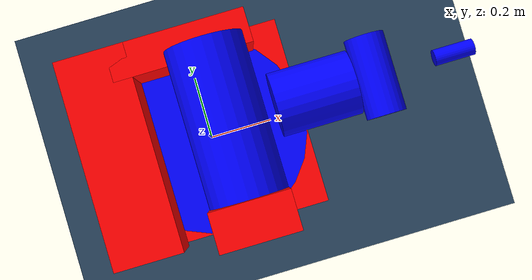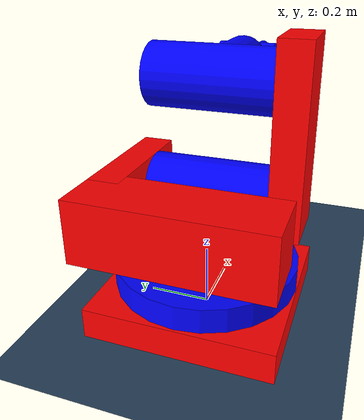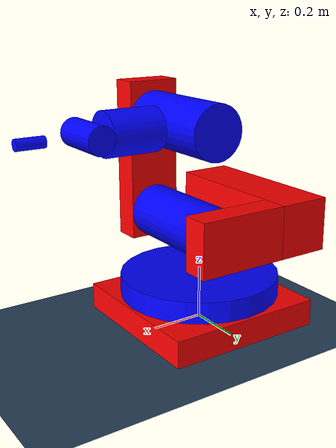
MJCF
<mujoco>
  <asset>
    <texture name="grid" type="2d" builtin="checker" rgb1=".1 .2 .3"
     rgb2=".2 .3 .4" width="300" height="300" mark="none"/>
    <material name="grid" texture="grid" texrepeat="1 1"
     texuniform="true" reflectance=".1"/>
  </asset>

  <visual>
    <scale framelength="0.2" framewidth="0.02"/>
  </visual>

  <default>
  <joint armature="0.01" damping="100."/>
  </default>

  <worldbody>

    <light name="light" pos="0 0 4"/>
    <geom name="floor" type="plane" pos="0 0 0" size="30 30 .01" material="grid" friction=".001"/>
    <camera name="fixed" pos="0 -1.5 2." euler="45 0 0"/>

    <!--  Abb base-->
    <body name="abb_base" pos="0 0 0.05" euler = "0 0 0">
        <geom name="abb_base_geom" type="box" size="0.3 0.3 0.05" rgba="1 0 0 1"/>

        <!-- first Joint -->
        <body name="first_joint_body" pos="0 0 0.342">
            <geom name="first_joint_geom" type="cylinder" size="0.3 0.04" rgba="0 0 1 1" pos="0 0 -0.245"/>
            <geom name="back_side_ABB" type="box" size="0.1 0.3 0.1" rgba="1 0 0 1" pos="-0.245 0 0"/>
            <geom name="left_side_ABB" type="box" size="0.2 0.05 0.1" rgba="1 0 0 1" pos="0 0.25 0"/>

            <joint name="first_joint" type="hinge"/>

            <!-- Segundo Joint -->
            <body name="second_joint_body" pos="0.06988 0 0" euler = "90 0 90">
                <geom name="second_joint_geom" type="cylinder" size="0.1 0.2" rgba="0 0 1 1" pos="0 0 0"/>
                <geom name="right_side_ABB" type="box" size="0.3 0.1 0.05" rgba="1 0 0 1" pos="0.2 0 0.25"/>

                <joint name="second_joint" type="hinge"/>

                <!-- Third Joint -->
                <body name="third_joint_body" pos="0.362 0 0" euler = "0 0 180">
                    <geom name="third_joint_geom" type="cylinder" size="0.1 0.2" rgba="0 0 1 1" pos="0 0 0"/>
                    <joint name="third_joint" type="hinge"/>

                    <!-- Fourth Joint -->
                    <body name="fourth_joint_body" pos="0 0.380 0" euler = "-90 0 180">
                        <geom name="fourth_joint_geom" type="cylinder" size="0.08 0.1" rgba="0 0 1 1" pos="0 0 -0.155"/>
                        <joint name="fourth_joint" type="hinge"/>

                        <!-- Fifth Joint -->
                        <body name="fifth_joint_body" pos="0 0 0" euler = "-90 0 180">
                            <geom name="fifth_joint_geom" type="cylinder" size="0.05 0.1" rgba="0 0 1 1" pos="0 0 0"/>
                            <joint name="fifth_joint" type="hinge"/>

                            <!-- Sixth Joint -->
                            <body name="sixth_joint_body" pos="0 0.25 0" euler = "-90 0 180">
                                <geom name="sixth_joint_geom" type="cylinder" size="0.02 0.05" rgba="0 0 1 1" pos="0 0 -0.05"/>
                                <joint name="sixth_joint" type="hinge"/>
                            </body>
                        </body>
                    </body>
                </body>
            </body>
        </body>
    </body>

  </worldbody>

    <actuator>
        <position name="J_1" joint="first_joint" kp="2000" />
        <position name="J_2" joint="second_joint" kp="7000"/>
        <position name="J_3" joint="third_joint" kp="70000" />
        <position name="J_4" joint="fourth_joint" kp="7000"/>
        <position name="J_5" joint="fifth_joint" kp="7000" />
        <position name="J_6" joint="sixth_joint" kp="7000" />

    </actuator>

</mujoco>
